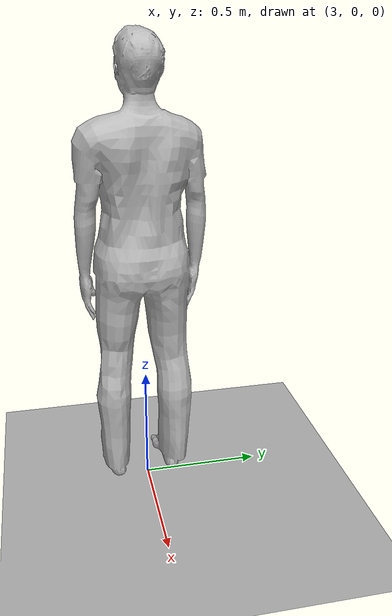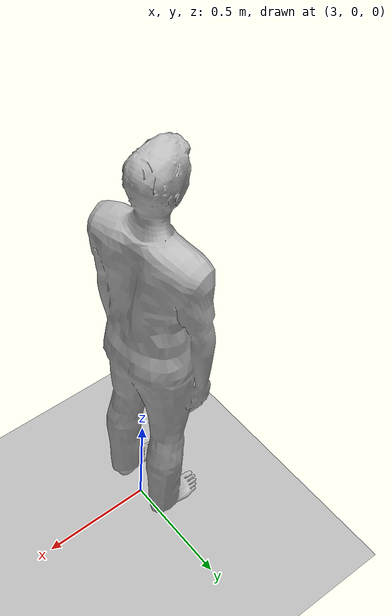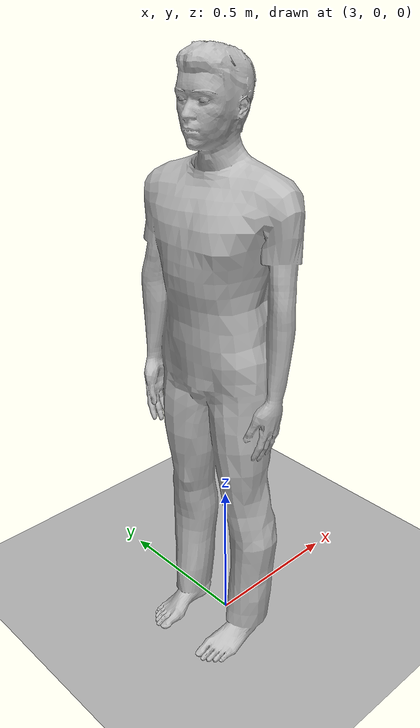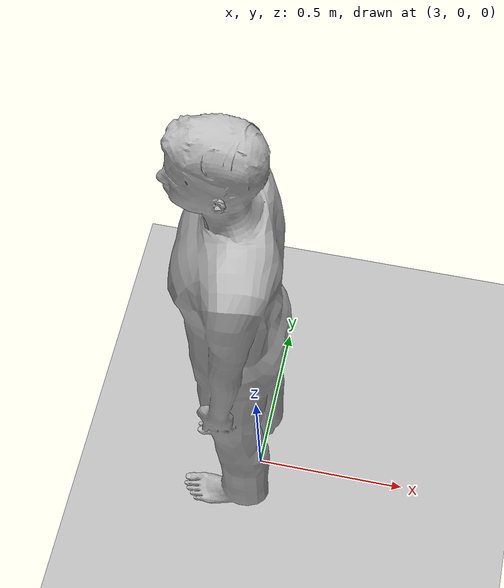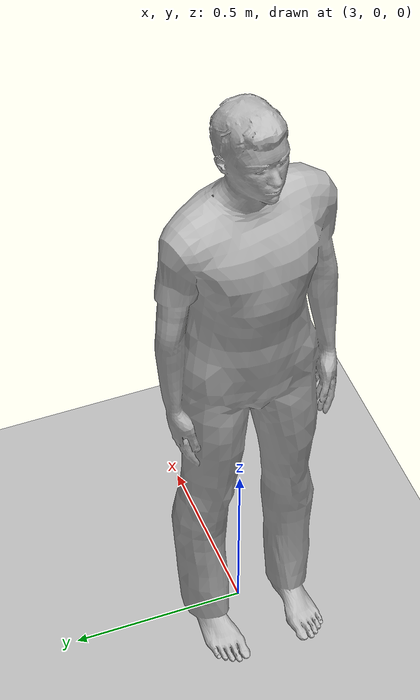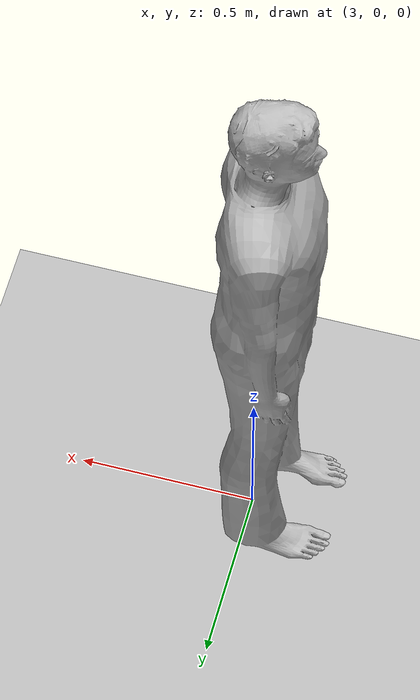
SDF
<sdf version="1.7">
  <world name="two_people">

    <!-- Required Gazebo systems for TurtleBot4 / ros2_control / sensors -->
    <plugin
      filename="gz-sim-physics-system"
      name="gz::sim::systems::Physics">
    </plugin>

    <plugin
      filename="gz-sim-user-commands-system"
      name="gz::sim::systems::UserCommands">
    </plugin>

    <plugin
      filename="gz-sim-scene-broadcaster-system"
      name="gz::sim::systems::SceneBroadcaster">
    </plugin>

    <plugin
      filename="gz-sim-sensors-system"
      name="gz::sim::systems::Sensors">
      <render_engine>ogre2</render_engine>
    </plugin>

    <scene>
      <ambient>0.8 0.8 0.8 1</ambient>
      <background>0.7 0.7 0.7 1</background>
      <shadows>false</shadows>
    </scene>

    <light name="sun" type="directional">
      <pose>0 0 20 0 0 0</pose>
      <cast_shadows>false</cast_shadows>
      <diffuse>1.0 1.0 1.0 1</diffuse>
      <specular>0.2 0.2 0.2 1</specular>
      <direction>-0.5 0.1 -0.9</direction>
    </light>

    <model name="ground_plane">
      <static>true</static>
      <link name="link">
        <collision name="collision">
          <geometry>
            <plane>
              <normal>0 0 1</normal>
              <size>20 20</size>
            </plane>
          </geometry>
        </collision>

        <visual name="visual">
          <geometry>
            <plane>
              <normal>0 0 1</normal>
              <size>20 20</size>
            </plane>
          </geometry>
          <material>
            <ambient>0.7 0.7 0.7 1</ambient>
            <diffuse>0.7 0.7 0.7 1</diffuse>
          </material>
        </visual>
      </link>
    </model>

    <!-- One standing human -->
    <model name="person_1">
      <static>true</static>
      <pose>3 0 0 0 0 -1.5</pose>

      <link name="body">

        <collision name="collision">
          <pose>0 0 0.85 0 0 0</pose>
          <geometry>
            <cylinder>
              <radius>0.25</radius>
              <length>1.7</length>
            </cylinder>
          </geometry>
        </collision>

        <visual name="visual">
          <pose>0 0 0 0 0 0</pose>
          <geometry>
            <mesh>
              <uri>model://person_standing/meshes/standing.dae</uri>
            </mesh>
          </geometry>
        </visual>

      </link>
    </model>

  </world>
</sdf>
